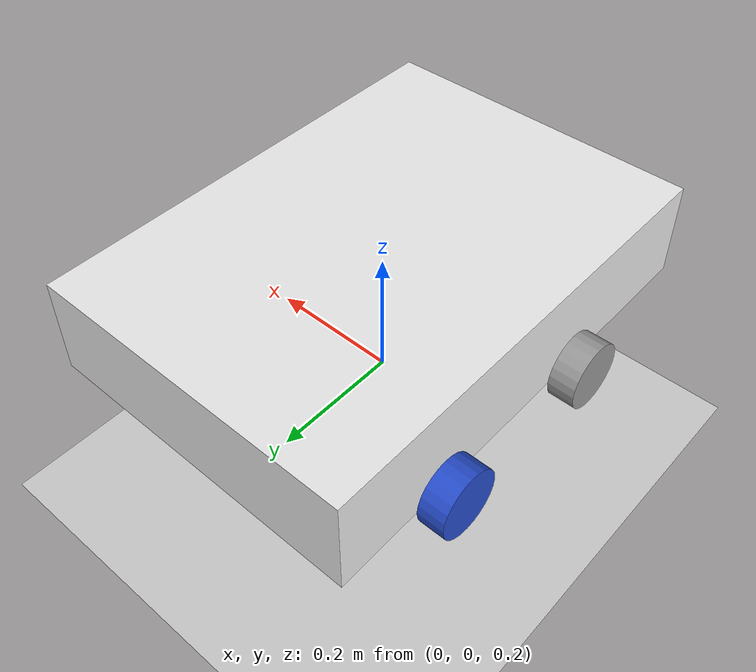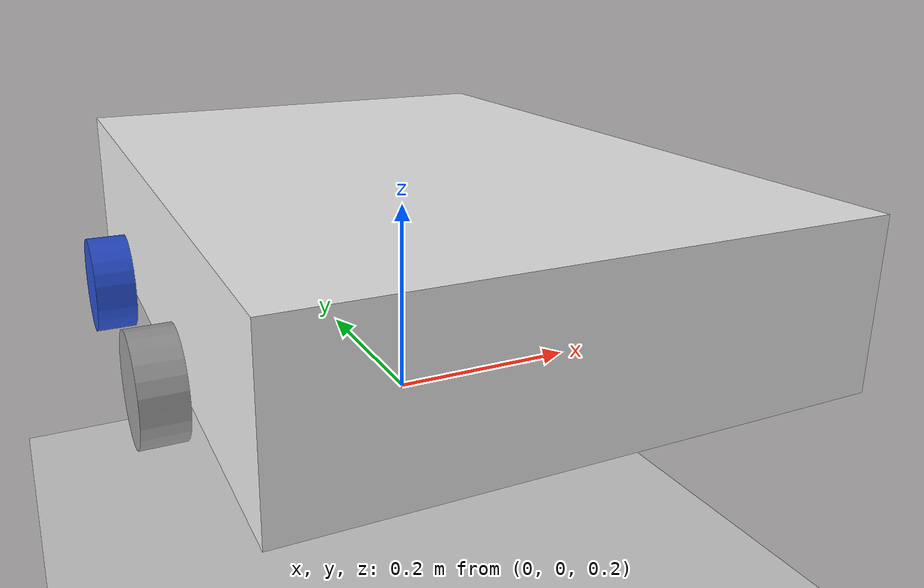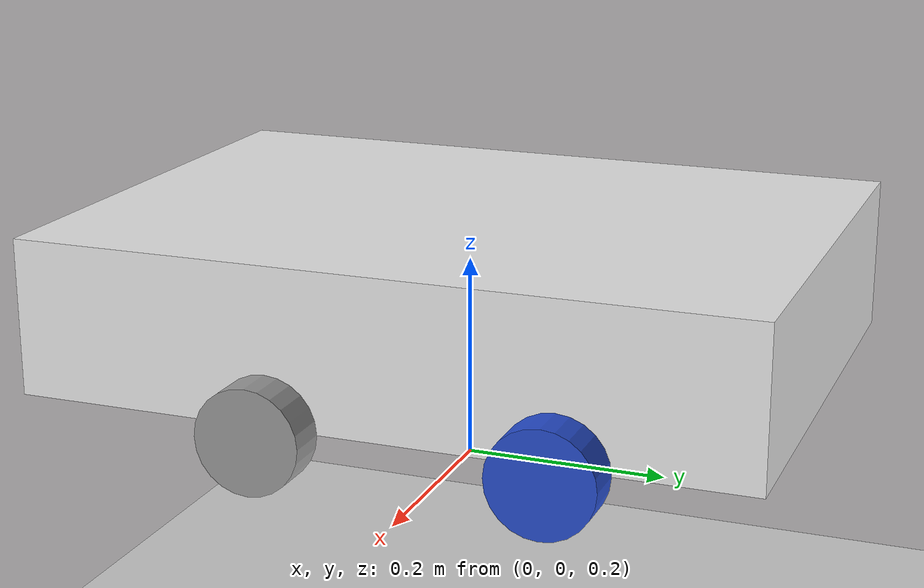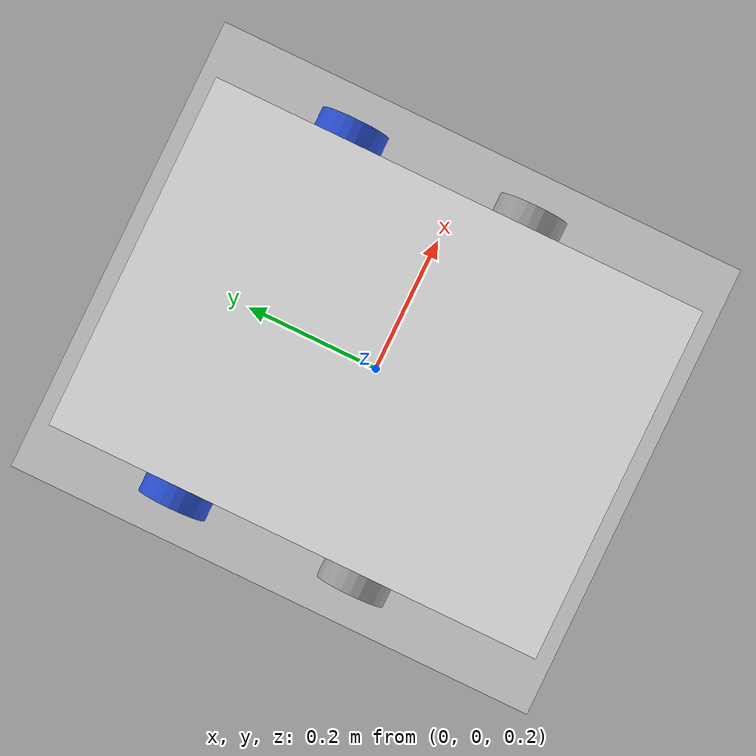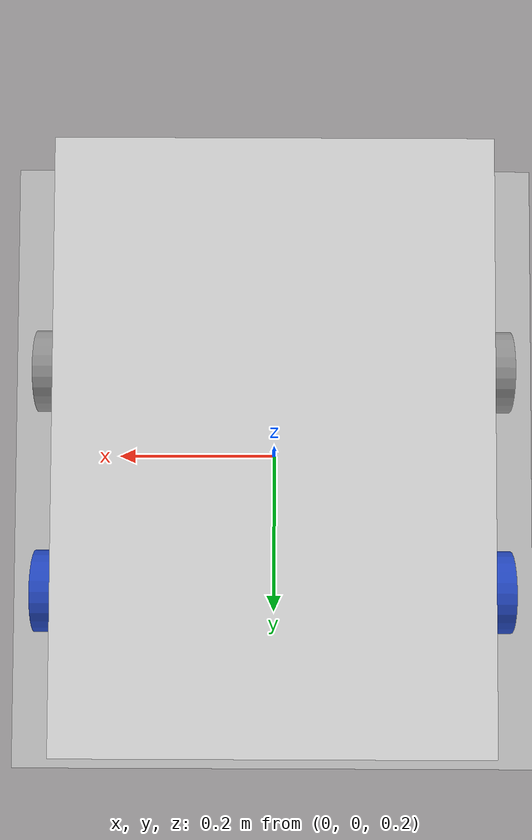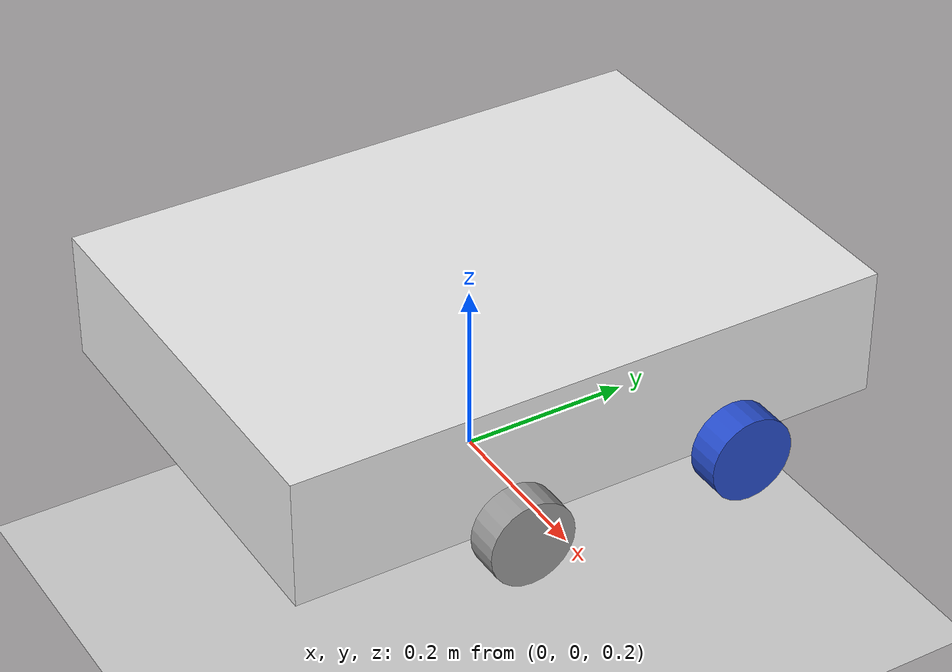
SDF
<sdf version="1.7">
 <world name="default">
  <light name="sun" type="directional">
   <pose>0 0 10 0 -0 0</pose>
   <diffuse>0.8 0.8 0.8 1</diffuse>
   <specular>0.2 0.2 0.2 1</specular>
   <attenuation>
    <range>1000</range>
    <constant>0.9</constant>
    <linear>0.01</linear>
    <quadratic>0.001</quadratic>
   </attenuation>
   <direction>-0.5 0.1 -0.9</direction>
   <spot><inner_angle>0</inner_angle><outer_angle>0</outer_angle><falloff>0</falloff></spot>
  </light>
  <model name="ground_plane">
   <static>1</static>
   <link name="link">
    <collision name="collision">
     <geometry><plane><normal>0 0 1</normal><size>100 100</size></plane></geometry>
     <surface>
      <contact><collide_bitmask>65535</collide_bitmask></contact>
      <friction><ode><mu>100</mu><mu2>50</mu2></ode></friction>
     </surface>
    </collision>
    <visual name="visual">
     <cast_shadows>0</cast_shadows>
     <geometry><plane><normal>0 0 1</normal><size>100 100</size></plane></geometry>
     <material>
      <script><uri>file://media/materials/scripts/gazebo.material</uri><name>Gazebo/Grey</name></script>
     </material>
    </visual>
   </link>
  </model>
  <gravity>0 0 -9.8</gravity>
  <magnetic_field>6e-06 2.3e-05 -4.2e-05</magnetic_field>
  <atmosphere type="adiabatic"/>
  <physics type="ode">
   <max_step_size>0.001</max_step_size>
   <real_time_factor>1</real_time_factor>
   <real_time_update_rate>1000</real_time_update_rate>
  </physics>
  <scene><ambient>0.4 0.4 0.4 1</ambient><background>0.7 0.7 0.7 1</background><shadows>1</shadows></scene>
  <audio><device>default</device></audio>
  <spherical_coordinates>
   <surface_model>EARTH_WGS84</surface_model>
   <latitude_deg>0</latitude_deg>
   <longitude_deg>0</longitude_deg>
   <elevation>0</elevation>
   <heading_deg>0</heading_deg>
  </spherical_coordinates>
  <model name="MiniP_bot">
   <link name="base_link">
    <inertial>
     <pose>0 0 0.075 0 -0 0</pose>
     <mass>0.5</mass>
     <inertia>
      <ixx>0.0113542</ixx>
      <ixy>0</ixy>
      <ixz>0</ixz>
      <iyy>0.0213542</iyy>
      <iyz>0</iyz>
      <izz>0.0308333</izz>
     </inertia>
    </inertial>
    <collision name="base_link_fixed_joint_lump__chassis_collision">
     <pose>0 0 0.075 0 -0 0</pose>
     <geometry><box><size>0.7 0.5 0.15</size></box></geometry>
    </collision>
    <visual name="base_link_fixed_joint_lump__chassis_visual">
     <pose>0 0 0.075 0 -0 0</pose>
     <geometry><box><size>0.7 0.5 0.15</size></box></geometry>
     <material>
      <script><name>Gazebo/White</name><uri>file://media/materials/scripts/gazebo.material</uri></script>
     </material>
    </visual>
   </link>
   <joint name="back_left_wheel_joint" type="revolute">
    <pose relative_to="base_link">-0.1 0.27 0 -1.5708 0 0</pose>
    <parent>base_link</parent>
    <child>back_left_wheel</child>
    <axis>
     <xyz>0 0 1</xyz>
     <limit><lower>-1e+16</lower><upper>1e+16</upper></limit>
     <dynamics><spring_reference>0</spring_reference><spring_stiffness>0</spring_stiffness></dynamics>
    </axis>
   </joint>
   <link name="back_left_wheel">
    <pose relative_to="back_left_wheel_joint">0 0 0 0 -0 0</pose>
    <inertial>
     <mass>0.1</mass>
     <inertia>
      <ixx>7.58333e-05</ixx>
      <ixy>0</ixy>
      <ixz>0</ixz>
      <iyy>7.58333e-05</iyy>
      <iyz>0</iyz>
      <izz>0.000125</izz>
     </inertia>
    </inertial>
    <collision name="back_left_wheel_collision">
     <geometry><cylinder><length>0.04</length><radius>0.05</radius></cylinder></geometry>
    </collision>
    <visual name="back_left_wheel_visual">
     <geometry><cylinder><length>0.04</length><radius>0.05</radius></cylinder></geometry>
     <material>
      <script><name>Gazebo/Gray</name><uri>file://media/materials/scripts/gazebo.material</uri></script>
     </material>
    </visual>
   </link>
   <joint name="back_right_wheel_joint" type="revolute">
    <pose relative_to="base_link">-0.1 -0.27 0 1.5708 -0 0</pose>
    <parent>base_link</parent>
    <child>back_right_wheel</child>
    <axis>
     <xyz>0 0 -1</xyz>
     <limit><lower>-1e+16</lower><upper>1e+16</upper></limit>
     <dynamics><spring_reference>0</spring_reference><spring_stiffness>0</spring_stiffness></dynamics>
    </axis>
   </joint>
   <link name="back_right_wheel">
    <pose relative_to="back_right_wheel_joint">0 0 0 0 -0 0</pose>
    <inertial>
     <mass>0.1</mass>
     <inertia>
      <ixx>7.58333e-05</ixx>
      <ixy>0</ixy>
      <ixz>0</ixz>
      <iyy>7.58333e-05</iyy>
      <iyz>0</iyz>
      <izz>0.000125</izz>
     </inertia>
    </inertial>
    <collision name="back_right_wheel_collision">
     <geometry><cylinder><length>0.04</length><radius>0.05</radius></cylinder></geometry>
    </collision>
    <visual name="back_right_wheel_visual">
     <geometry><cylinder><length>0.04</length><radius>0.05</radius></cylinder></geometry>
     <material>
      <script><name>Gazebo/Gray</name><uri>file://media/materials/scripts/gazebo.material</uri></script>
     </material>
    </visual>
   </link>
   <joint name="front_left_wheel_joint" type="revolute">
    <pose relative_to="base_link">0.17 0.27 0 -1.5708 0 0</pose>
    <parent>base_link</parent>
    <child>front_left_wheel</child>
    <axis>
     <xyz>0 0 1</xyz>
     <limit><lower>-1e+16</lower><upper>1e+16</upper></limit>
     <dynamics><spring_reference>0</spring_reference><spring_stiffness>0</spring_stiffness></dynamics>
    </axis>
   </joint>
   <link name="front_left_wheel">
    <pose relative_to="front_left_wheel_joint">0 0 0 0 -0 0</pose>
    <inertial>
     <mass>0.1</mass>
     <inertia>
      <ixx>7.58333e-05</ixx>
      <ixy>0</ixy>
      <ixz>0</ixz>
      <iyy>7.58333e-05</iyy>
      <iyz>0</iyz>
      <izz>0.000125</izz>
     </inertia>
    </inertial>
    <collision name="front_left_wheel_collision">
     <geometry><cylinder><length>0.04</length><radius>0.05</radius></cylinder></geometry>
    </collision>
    <visual name="front_left_wheel_visual">
     <geometry><cylinder><length>0.04</length><radius>0.05</radius></cylinder></geometry>
     <material>
      <script><name>Gazebo/Blue</name><uri>file://media/materials/scripts/gazebo.material</uri></script>
     </material>
    </visual>
   </link>
   <joint name="front_right_wheel_joint" type="revolute">
    <pose relative_to="base_link">0.17 -0.27 0 1.5708 -0 0</pose>
    <parent>base_link</parent>
    <child>front_right_wheel</child>
    <axis>
     <xyz>0 0 -1</xyz>
     <limit><lower>-1e+16</lower><upper>1e+16</upper></limit>
     <dynamics><spring_reference>0</spring_reference><spring_stiffness>0</spring_stiffness></dynamics>
    </axis>
   </joint>
   <link name="front_right_wheel">
    <pose relative_to="front_right_wheel_joint">0 0 0 0 -0 0</pose>
    <inertial>
     <mass>0.1</mass>
     <inertia>
      <ixx>7.58333e-05</ixx>
      <ixy>0</ixy>
      <ixz>0</ixz>
      <iyy>7.58333e-05</iyy>
      <iyz>0</iyz>
      <izz>0.000125</izz>
     </inertia>
    </inertial>
    <collision name="front_right_wheel_collision">
     <geometry><cylinder><length>0.04</length><radius>0.05</radius></cylinder></geometry>
    </collision>
    <visual name="front_right_wheel_visual">
     <geometry><cylinder><length>0.04</length><radius>0.05</radius></cylinder></geometry>
     <material>
      <script><name>Gazebo/Blue</name><uri>file://media/materials/scripts/gazebo.material</uri></script>
     </material>
    </visual>
   </link>
   <static>0</static>
   <plugin name="diff_drive" filename="libgazebo_ros_diff_drive.so">
    <left_joint>back_left_wheel_joint</left_joint>
    <right_joint>back_right_wheel_joint</right_joint>
    <wheel_separation>0.5</wheel_separation>
    <wheel_diameter>0.1</wheel_diameter>
    <max_wheel_torque>200</max_wheel_torque>
    <max_wheel_acceleration>10.0</max_wheel_acceleration>
    <odometry_frame>odom</odometry_frame>
    <robot_base_frame>base_link</robot_base_frame>
    <publish_odom>1</publish_odom>
    <publish_odom_tf>1</publish_odom_tf>
    <publish_wheel_tf>1</publish_wheel_tf>
   </plugin>
   <plugin name="front_wheel" filename="libgazebo_ros_diff_drive.so">
    <left_joint>front_left_wheel_joint</left_joint>
    <right_joint>front_right_wheel_joint</right_joint>
    <wheel_separation>0.5</wheel_separation>
    <wheel_diameter>0.1</wheel_diameter>
    <max_wheel_torque>200</max_wheel_torque>
    <max_wheel_acceleration>10.0</max_wheel_acceleration>
    <odometry_frame>odom</odometry_frame>
    <robot_base_frame>base_link</robot_base_frame>
    <publish_odom>1</publish_odom>
    <publish_odom_tf>1</publish_odom_tf>
    <publish_wheel_tf>1</publish_wheel_tf>
   </plugin>
   <pose>0.000908 0.001004 0.300003 -3e-06 -1e-06 1.57075</pose>
  </model>
 </world>
</sdf>
